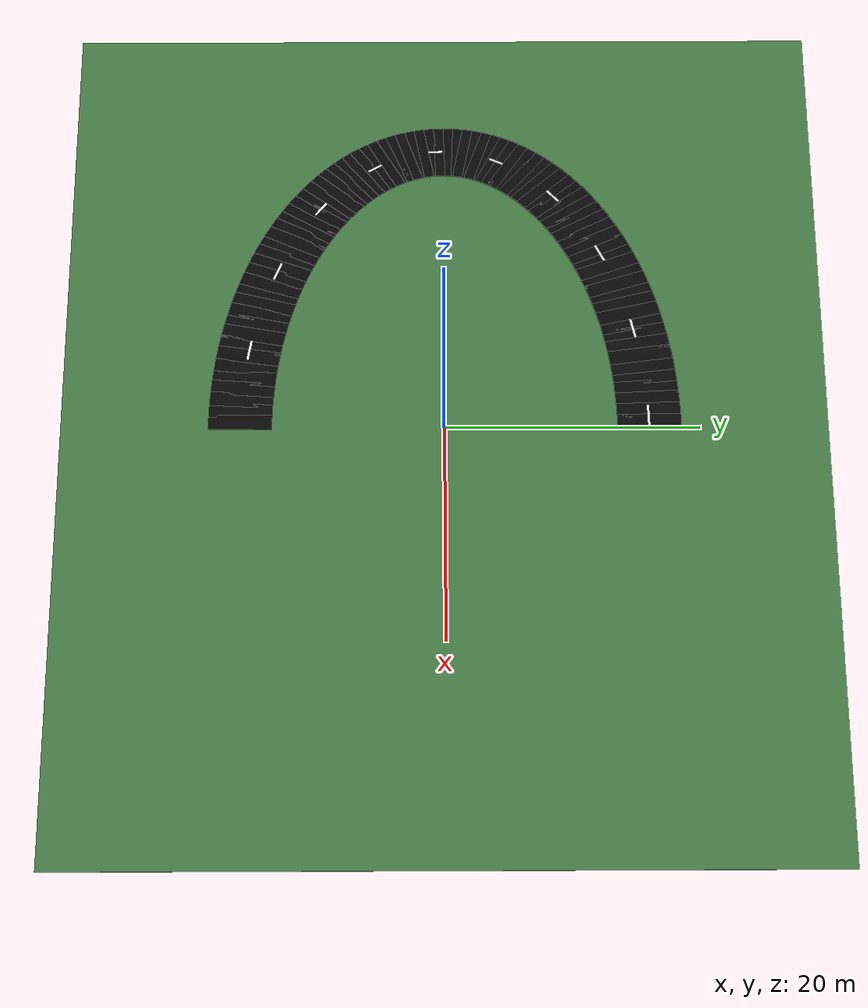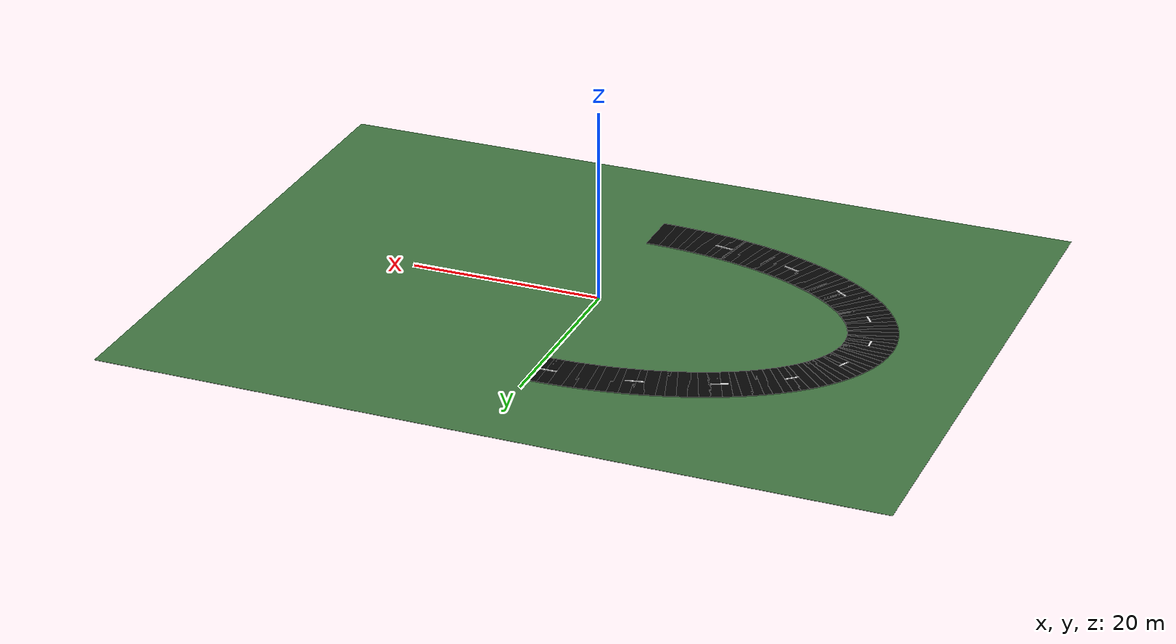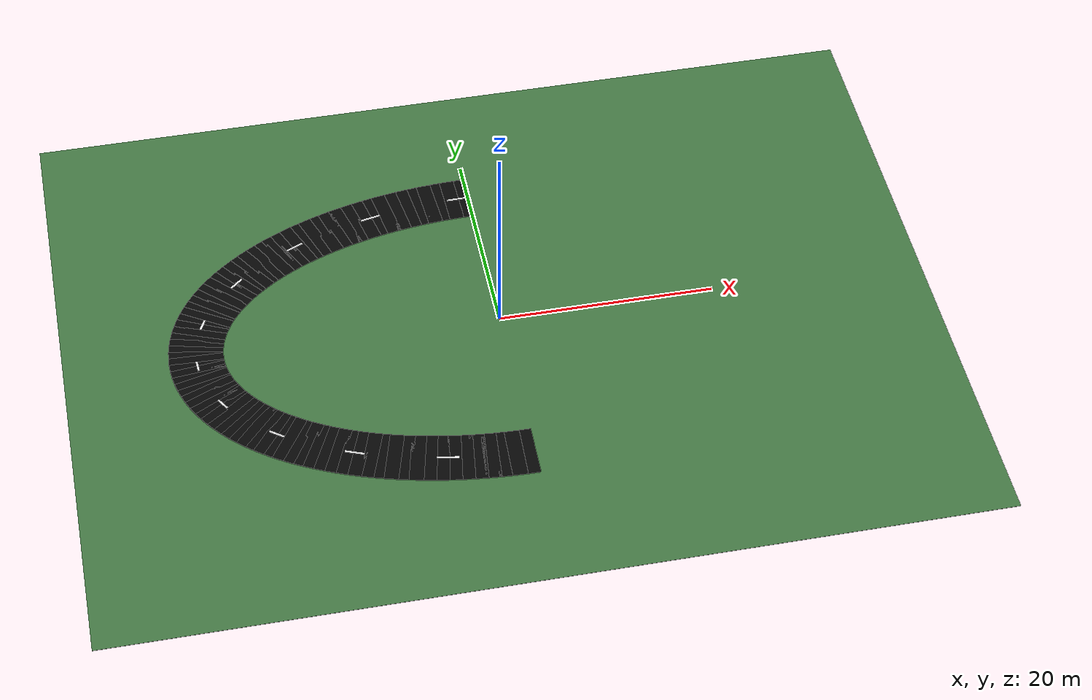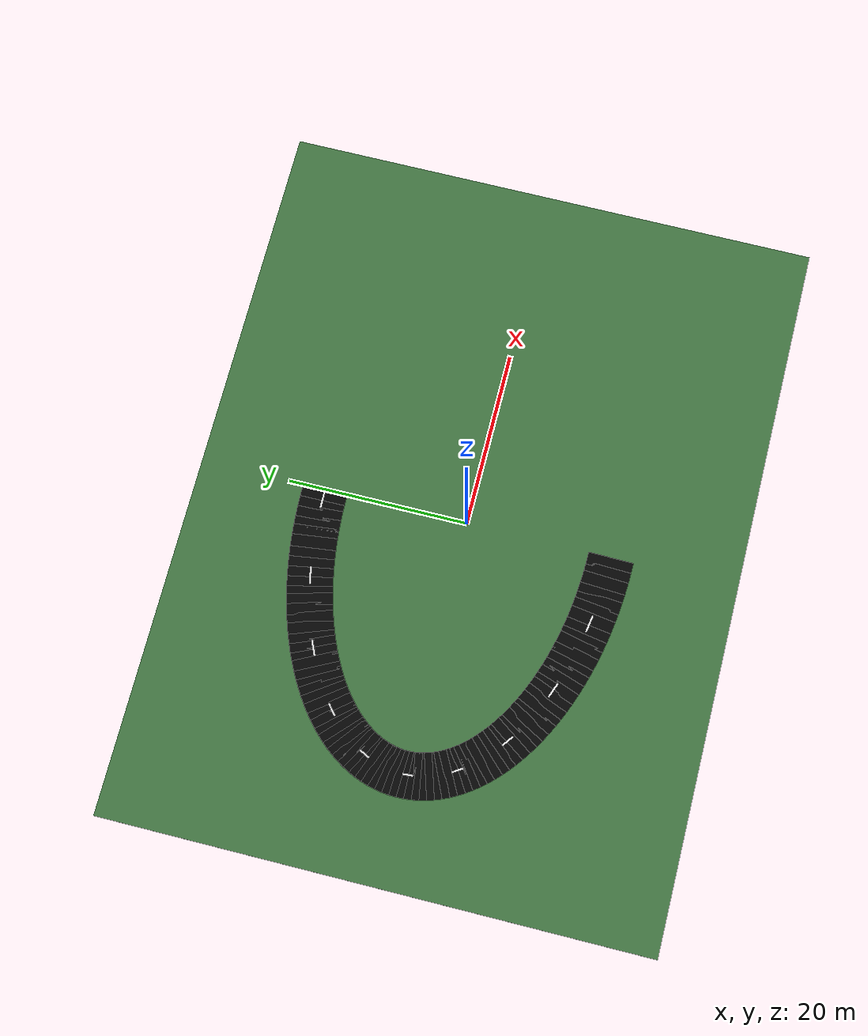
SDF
<sdf version="1.8">
 <world name="ellipse_road_world">
  <model name="ground">
   <static>true</static>
   <pose>0 0 -0.03 0 0 0</pose>
   <link name="link">
    <collision name="collision"><geometry><box><size>80 60 0.04</size></box></geometry></collision>
    <visual name="visual">
     <geometry><box><size>80 60 0.04</size></box></geometry>
     <material><ambient>0.25 0.45 0.25 1</ambient><diffuse>0.25 0.45 0.25 1</diffuse></material>
    </visual>
   </link>
  </model>
  <model name="road_segment_40">
   <static>true</static>
   <pose>-0.550 15.994 0.02 0 0 -3.130372</pose>
   <link name="link">
    <collision name="collision"><geometry><box><size>1.374 5.000 0.080</size></box></geometry></collision>
    <visual name="visual">
     <geometry><box><size>1.374 5.000 0.080</size></box></geometry>
     <material><ambient>0.02 0.02 0.02 1</ambient><diffuse>0.02 0.02 0.02 1</diffuse></material>
    </visual>
   </link>
  </model>
  <model name="road_segment_41">
   <static>true</static>
   <pose>-1.648 15.969 0.02 0 0 -3.107906</pose>
   <link name="link">
    <collision name="collision"><geometry><box><size>1.373 5.000 0.080</size></box></geometry></collision>
    <visual name="visual">
     <geometry><box><size>1.373 5.000 0.080</size></box></geometry>
     <material><ambient>0.02 0.02 0.02 1</ambient><diffuse>0.02 0.02 0.02 1</diffuse></material>
    </visual>
   </link>
  </model>
  <model name="road_segment_42">
   <static>true</static>
   <pose>-2.744 15.920 0.02 0 0 -3.085371</pose>
   <link name="link">
    <collision name="collision"><geometry><box><size>1.370 5.000 0.080</size></box></geometry></collision>
    <visual name="visual">
     <geometry><box><size>1.370 5.000 0.080</size></box></geometry>
     <material><ambient>0.02 0.02 0.02 1</ambient><diffuse>0.02 0.02 0.02 1</diffuse></material>
    </visual>
   </link>
  </model>
  <model name="road_segment_43">
   <static>true</static>
   <pose>-3.836 15.846 0.02 0 0 -3.062718</pose>
   <link name="link">
    <collision name="collision"><geometry><box><size>1.366 5.000 0.080</size></box></geometry></collision>
    <visual name="visual">
     <geometry><box><size>1.366 5.000 0.080</size></box></geometry>
     <material><ambient>0.02 0.02 0.02 1</ambient><diffuse>0.02 0.02 0.02 1</diffuse></material>
    </visual>
   </link>
  </model>
  <model name="road_segment_44">
   <static>true</static>
   <pose>-4.921 15.748 0.02 0 0 -3.039900</pose>
   <link name="link">
    <collision name="collision"><geometry><box><size>1.360 5.000 0.080</size></box></geometry></collision>
    <visual name="visual">
     <geometry><box><size>1.360 5.000 0.080</size></box></geometry>
     <material><ambient>0.02 0.02 0.02 1</ambient><diffuse>0.02 0.02 0.02 1</diffuse></material>
    </visual>
   </link>
  </model>
  <model name="road_segment_45">
   <static>true</static>
   <pose>-5.999 15.625 0.02 0 0 -3.016868</pose>
   <link name="link">
    <collision name="collision"><geometry><box><size>1.353 5.000 0.080</size></box></geometry></collision>
    <visual name="visual">
     <geometry><box><size>1.353 5.000 0.080</size></box></geometry>
     <material><ambient>0.02 0.02 0.02 1</ambient><diffuse>0.02 0.02 0.02 1</diffuse></material>
    </visual>
   </link>
  </model>
  <model name="road_segment_46">
   <static>true</static>
   <pose>-7.068 15.479 0.02 0 0 -2.993571</pose>
   <link name="link">
    <collision name="collision"><geometry><box><size>1.345 5.000 0.080</size></box></geometry></collision>
    <visual name="visual">
     <geometry><box><size>1.345 5.000 0.080</size></box></geometry>
     <material><ambient>0.02 0.02 0.02 1</ambient><diffuse>0.02 0.02 0.02 1</diffuse></material>
    </visual>
   </link>
  </model>
  <model name="road_segment_47">
   <static>true</static>
   <pose>-8.126 15.308 0.02 0 0 -2.969957</pose>
   <link name="link">
    <collision name="collision"><geometry><box><size>1.335 5.000 0.080</size></box></geometry></collision>
    <visual name="visual">
     <geometry><box><size>1.335 5.000 0.080</size></box></geometry>
     <material><ambient>0.02 0.02 0.02 1</ambient><diffuse>0.02 0.02 0.02 1</diffuse></material>
    </visual>
   </link>
  </model>
  <model name="road_segment_48">
   <static>true</static>
   <pose>-9.172 15.114 0.02 0 0 -2.945973</pose>
   <link name="link">
    <collision name="collision"><geometry><box><size>1.324 5.000 0.080</size></box></geometry></collision>
    <visual name="visual">
     <geometry><box><size>1.324 5.000 0.080</size></box></geometry>
     <material><ambient>0.02 0.02 0.02 1</ambient><diffuse>0.02 0.02 0.02 1</diffuse></material>
    </visual>
   </link>
  </model>
  <model name="road_segment_49">
   <static>true</static>
   <pose>-10.203 14.897 0.02 0 0 -2.921561</pose>
   <link name="link">
    <collision name="collision"><geometry><box><size>1.311 5.000 0.080</size></box></geometry></collision>
    <visual name="visual">
     <geometry><box><size>1.311 5.000 0.080</size></box></geometry>
     <material><ambient>0.02 0.02 0.02 1</ambient><diffuse>0.02 0.02 0.02 1</diffuse></material>
    </visual>
   </link>
  </model>
  <model name="road_segment_50">
   <static>true</static>
   <pose>-11.219 14.656 0.02 0 0 -2.896663</pose>
   <link name="link">
    <collision name="collision"><geometry><box><size>1.298 5.000 0.080</size></box></geometry></collision>
    <visual name="visual">
     <geometry><box><size>1.298 5.000 0.080</size></box></geometry>
     <material><ambient>0.02 0.02 0.02 1</ambient><diffuse>0.02 0.02 0.02 1</diffuse></material>
    </visual>
   </link>
  </model>
  <model name="road_segment_51">
   <static>true</static>
   <pose>-12.217 14.393 0.02 0 0 -2.871217</pose>
   <link name="link">
    <collision name="collision"><geometry><box><size>1.283 5.000 0.080</size></box></geometry></collision>
    <visual name="visual">
     <geometry><box><size>1.283 5.000 0.080</size></box></geometry>
     <material><ambient>0.02 0.02 0.02 1</ambient><diffuse>0.02 0.02 0.02 1</diffuse></material>
    </visual>
   </link>
  </model>
  <model name="road_segment_52">
   <static>true</static>
   <pose>-13.197 14.108 0.02 0 0 -2.845157</pose>
   <link name="link">
    <collision name="collision"><geometry><box><size>1.267 5.000 0.080</size></box></geometry></collision>
    <visual name="visual">
     <geometry><box><size>1.267 5.000 0.080</size></box></geometry>
     <material><ambient>0.02 0.02 0.02 1</ambient><diffuse>0.02 0.02 0.02 1</diffuse></material>
    </visual>
   </link>
  </model>
  <model name="road_segment_53">
   <static>true</static>
   <pose>-14.156 13.801 0.02 0 0 -2.818415</pose>
   <link name="link">
    <collision name="collision"><geometry><box><size>1.250 5.000 0.080</size></box></geometry></collision>
    <visual name="visual">
     <geometry><box><size>1.250 5.000 0.080</size></box></geometry>
     <material><ambient>0.02 0.02 0.02 1</ambient><diffuse>0.02 0.02 0.02 1</diffuse></material>
    </visual>
   </link>
  </model>
  <model name="road_segment_54">
   <static>true</static>
   <pose>-15.093 13.473 0.02 0 0 -2.790916</pose>
   <link name="link">
    <collision name="collision"><geometry><box><size>1.233 5.000 0.080</size></box></geometry></collision>
    <visual name="visual">
     <geometry><box><size>1.233 5.000 0.080</size></box></geometry>
     <material><ambient>0.02 0.02 0.02 1</ambient><diffuse>0.02 0.02 0.02 1</diffuse></material>
    </visual>
   </link>
  </model>
  <model name="road_segment_55">
   <static>true</static>
   <pose>-16.007 13.124 0.02 0 0 -2.762584</pose>
   <link name="link">
    <collision name="collision"><geometry><box><size>1.214 5.000 0.080</size></box></geometry></collision>
    <visual name="visual">
     <geometry><box><size>1.214 5.000 0.080</size></box></geometry>
     <material><ambient>0.02 0.02 0.02 1</ambient><diffuse>0.02 0.02 0.02 1</diffuse></material>
    </visual>
   </link>
  </model>
  <model name="road_segment_56">
   <static>true</static>
   <pose>-16.896 12.755 0.02 0 0 -2.733336</pose>
   <link name="link">
    <collision name="collision"><geometry><box><size>1.194 5.000 0.080</size></box></geometry></collision>
    <visual name="visual">
     <geometry><box><size>1.194 5.000 0.080</size></box></geometry>
     <material><ambient>0.02 0.02 0.02 1</ambient><diffuse>0.02 0.02 0.02 1</diffuse></material>
    </visual>
   </link>
  </model>
  <model name="road_segment_57">
   <static>true</static>
   <pose>-17.760 12.366 0.02 0 0 -2.703085</pose>
   <link name="link">
    <collision name="collision"><geometry><box><size>1.173 5.000 0.080</size></box></geometry></collision>
    <visual name="visual">
     <geometry><box><size>1.173 5.000 0.080</size></box></geometry>
     <material><ambient>0.02 0.02 0.02 1</ambient><diffuse>0.02 0.02 0.02 1</diffuse></material>
    </visual>
   </link>
  </model>
  <model name="road_segment_58">
   <static>true</static>
   <pose>-18.595 11.958 0.02 0 0 -2.671737</pose>
   <link name="link">
    <collision name="collision"><geometry><box><size>1.152 5.000 0.080</size></box></geometry></collision>
    <visual name="visual">
     <geometry><box><size>1.152 5.000 0.080</size></box></geometry>
     <material><ambient>0.02 0.02 0.02 1</ambient><diffuse>0.02 0.02 0.02 1</diffuse></material>
    </visual>
   </link>
  </model>
  <model name="road_segment_59">
   <static>true</static>
   <pose>-19.403 11.531 0.02 0 0 -2.639196</pose>
   <link name="link">
    <collision name="collision"><geometry><box><size>1.130 5.000 0.080</size></box></geometry></collision>
    <visual name="visual">
     <geometry><box><size>1.130 5.000 0.080</size></box></geometry>
     <material><ambient>0.02 0.02 0.02 1</ambient><diffuse>0.02 0.02 0.02 1</diffuse></material>
    </visual>
   </link>
  </model>
  <model name="road_segment_60">
   <static>true</static>
   <pose>-20.180 11.087 0.02 0 0 -2.605359</pose>
   <link name="link">
    <collision name="collision"><geometry><box><size>1.108 5.000 0.080</size></box></geometry></collision>
    <visual name="visual">
     <geometry><box><size>1.108 5.000 0.080</size></box></geometry>
     <material><ambient>0.02 0.02 0.02 1</ambient><diffuse>0.02 0.02 0.02 1</diffuse></material>
    </visual>
   </link>
  </model>
  <model name="road_segment_61">
   <static>true</static>
   <pose>-20.926 10.626 0.02 0 0 -2.570119</pose>
   <link name="link">
    <collision name="collision"><geometry><box><size>1.085 5.000 0.080</size></box></geometry></collision>
    <visual name="visual">
     <geometry><box><size>1.085 5.000 0.080</size></box></geometry>
     <material><ambient>0.02 0.02 0.02 1</ambient><diffuse>0.02 0.02 0.02 1</diffuse></material>
    </visual>
   </link>
  </model>
  <model name="road_segment_62">
   <static>true</static>
   <pose>-21.640 10.148 0.02 0 0 -2.533362</pose>
   <link name="link">
    <collision name="collision"><geometry><box><size>1.062 5.000 0.080</size></box></geometry></collision>
    <visual name="visual">
     <geometry><box><size>1.062 5.000 0.080</size></box></geometry>
     <material><ambient>0.02 0.02 0.02 1</ambient><diffuse>0.02 0.02 0.02 1</diffuse></material>
    </visual>
   </link>
  </model>
  <model name="road_segment_63">
   <static>true</static>
   <pose>-22.321 9.655 0.02 0 0 -2.494976</pose>
   <link name="link">
    <collision name="collision"><geometry><box><size>1.039 5.000 0.080</size></box></geometry></collision>
    <visual name="visual">
     <geometry><box><size>1.039 5.000 0.080</size></box></geometry>
     <material><ambient>0.02 0.02 0.02 1</ambient><diffuse>0.02 0.02 0.02 1</diffuse></material>
    </visual>
   </link>
  </model>
  <model name="road_segment_64">
   <static>true</static>
   <pose>-22.967 9.147 0.02 0 0 -2.454843</pose>
   <link name="link">
    <collision name="collision"><geometry><box><size>1.016 5.000 0.080</size></box></geometry></collision>
    <visual name="visual">
     <geometry><box><size>1.016 5.000 0.080</size></box></geometry>
     <material><ambient>0.02 0.02 0.02 1</ambient><diffuse>0.02 0.02 0.02 1</diffuse></material>
    </visual>
   </link>
  </model>
  <model name="road_segment_65">
   <static>true</static>
   <pose>-23.578 8.625 0.02 0 0 -2.412848</pose>
   <link name="link">
    <collision name="collision"><geometry><box><size>0.993 5.000 0.080</size></box></geometry></collision>
    <visual name="visual">
     <geometry><box><size>0.993 5.000 0.080</size></box></geometry>
     <material><ambient>0.02 0.02 0.02 1</ambient><diffuse>0.02 0.02 0.02 1</diffuse></material>
    </visual>
   </link>
  </model>
  <model name="road_segment_66">
   <static>true</static>
   <pose>-24.152 8.089 0.02 0 0 -2.368877</pose>
   <link name="link">
    <collision name="collision"><geometry><box><size>0.971 5.000 0.080</size></box></geometry></collision>
    <visual name="visual">
     <geometry><box><size>0.971 5.000 0.080</size></box></geometry>
     <material><ambient>0.02 0.02 0.02 1</ambient><diffuse>0.02 0.02 0.02 1</diffuse></material>
    </visual>
   </link>
  </model>
  <model name="road_segment_67">
   <static>true</static>
   <pose>-24.689 7.541 0.02 0 0 -2.322826</pose>
   <link name="link">
    <collision name="collision"><geometry><box><size>0.948 5.000 0.080</size></box></geometry></collision>
    <visual name="visual">
     <geometry><box><size>0.948 5.000 0.080</size></box></geometry>
     <material><ambient>0.02 0.02 0.02 1</ambient><diffuse>0.02 0.02 0.02 1</diffuse></material>
    </visual>
   </link>
  </model>
  <model name="road_segment_68">
   <static>true</static>
   <pose>-25.188 6.981 0.02 0 0 -2.274600</pose>
   <link name="link">
    <collision name="collision"><geometry><box><size>0.927 5.000 0.080</size></box></geometry></collision>
    <visual name="visual">
     <geometry><box><size>0.927 5.000 0.080</size></box></geometry>
     <material><ambient>0.02 0.02 0.02 1</ambient><diffuse>0.02 0.02 0.02 1</diffuse></material>
    </visual>
   </link>
  </model>
  <model name="road_segment_69">
   <static>true</static>
   <pose>-25.648 6.411 0.02 0 0 -2.224122</pose>
   <link name="link">
    <collision name="collision"><geometry><box><size>0.906 5.000 0.080</size></box></geometry></collision>
    <visual name="visual">
     <geometry><box><size>0.906 5.000 0.080</size></box></geometry>
     <material><ambient>0.02 0.02 0.02 1</ambient><diffuse>0.02 0.02 0.02 1</diffuse></material>
    </visual>
   </link>
  </model>
  <model name="road_segment_70">
   <static>true</static>
   <pose>-26.069 5.830 0.02 0 0 -2.171341</pose>
   <link name="link">
    <collision name="collision"><geometry><box><size>0.886 5.000 0.080</size></box></geometry></collision>
    <visual name="visual">
     <geometry><box><size>0.886 5.000 0.080</size></box></geometry>
     <material><ambient>0.02 0.02 0.02 1</ambient><diffuse>0.02 0.02 0.02 1</diffuse></material>
    </visual>
   </link>
  </model>
  <model name="road_segment_71">
   <static>true</static>
   <pose>-26.449 5.241 0.02 0 0 -2.116235</pose>
   <link name="link">
    <collision name="collision"><geometry><box><size>0.868 5.000 0.080</size></box></geometry></collision>
    <visual name="visual">
     <geometry><box><size>0.868 5.000 0.080</size></box></geometry>
     <material><ambient>0.02 0.02 0.02 1</ambient><diffuse>0.02 0.02 0.02 1</diffuse></material>
    </visual>
   </link>
  </model>
  <model name="road_segment_72">
   <static>true</static>
   <pose>-26.789 4.644 0.02 0 0 -2.058823</pose>
   <link name="link">
    <collision name="collision"><geometry><box><size>0.851 5.000 0.080</size></box></geometry></collision>
    <visual name="visual">
     <geometry><box><size>0.851 5.000 0.080</size></box></geometry>
     <material><ambient>0.02 0.02 0.02 1</ambient><diffuse>0.02 0.02 0.02 1</diffuse></material>
    </visual>
   </link>
  </model>
  <model name="road_segment_73">
   <static>true</static>
   <pose>-27.088 4.039 0.02 0 0 -1.999172</pose>
   <link name="link">
    <collision name="collision"><geometry><box><size>0.835 5.000 0.080</size></box></geometry></collision>
    <visual name="visual">
     <geometry><box><size>0.835 5.000 0.080</size></box></geometry>
     <material><ambient>0.02 0.02 0.02 1</ambient><diffuse>0.02 0.02 0.02 1</diffuse></material>
    </visual>
   </link>
  </model>
  <model name="road_segment_74">
   <static>true</static>
   <pose>-27.344 3.428 0.02 0 0 -1.937401</pose>
   <link name="link">
    <collision name="collision"><geometry><box><size>0.822 5.000 0.080</size></box></geometry></collision>
    <visual name="visual">
     <geometry><box><size>0.822 5.000 0.080</size></box></geometry>
     <material><ambient>0.02 0.02 0.02 1</ambient><diffuse>0.02 0.02 0.02 1</diffuse></material>
    </visual>
   </link>
  </model>
  <model name="road_segment_75">
   <static>true</static>
   <pose>-27.559 2.812 0.02 0 0 -1.873691</pose>
   <link name="link">
    <collision name="collision"><geometry><box><size>0.810 5.000 0.080</size></box></geometry></collision>
    <visual name="visual">
     <geometry><box><size>0.810 5.000 0.080</size></box></geometry>
     <material><ambient>0.02 0.02 0.02 1</ambient><diffuse>0.02 0.02 0.02 1</diffuse></material>
    </visual>
   </link>
  </model>
  <model name="road_segment_76">
   <static>true</static>
   <pose>-27.731 2.192 0.02 0 0 -1.808283</pose>
   <link name="link">
    <collision name="collision"><geometry><box><size>0.800 5.000 0.080</size></box></geometry></collision>
    <visual name="visual">
     <geometry><box><size>0.800 5.000 0.080</size></box></geometry>
     <material><ambient>0.02 0.02 0.02 1</ambient><diffuse>0.02 0.02 0.02 1</diffuse></material>
    </visual>
   </link>
  </model>
  <model name="road_segment_77">
   <static>true</static>
   <pose>-27.860 1.568 0.02 0 0 -1.741479</pose>
   <link name="link">
    <collision name="collision"><geometry><box><size>0.793 5.000 0.080</size></box></geometry></collision>
    <visual name="visual">
     <geometry><box><size>0.793 5.000 0.080</size></box></geometry>
     <material><ambient>0.02 0.02 0.02 1</ambient><diffuse>0.02 0.02 0.02 1</diffuse></material>
    </visual>
   </link>
  </model>
  <model name="road_segment_78">
   <static>true</static>
   <pose>-27.946 0.942 0.02 0 0 -1.673635</pose>
   <link name="link">
    <collision name="collision"><geometry><box><size>0.788 5.000 0.080</size></box></geometry></collision>
    <visual name="visual">
     <geometry><box><size>0.788 5.000 0.080</size></box></geometry>
     <material><ambient>0.02 0.02 0.02 1</ambient><diffuse>0.02 0.02 0.02 1</diffuse></material>
    </visual>
   </link>
  </model>
  <model name="road_segment_79">
   <static>true</static>
   <pose>-27.989 0.314 0.02 0 0 -1.605148</pose>
   <link name="link">
    <collision name="collision"><geometry><box><size>0.786 5.000 0.080</size></box></geometry></collision>
    <visual name="visual">
     <geometry><box><size>0.786 5.000 0.080</size></box></geometry>
     <material><ambient>0.02 0.02 0.02 1</ambient><diffuse>0.02 0.02 0.02 1</diffuse></material>
    </visual>
   </link>
  </model>
  <model name="road_segment_80">
   <static>true</static>
   <pose>-27.989 -0.314 0.02 0 0 -1.536444</pose>
   <link name="link">
    <collision name="collision"><geometry><box><size>0.786 5.000 0.080</size></box></geometry></collision>
    <visual name="visual">
     <geometry><box><size>0.786 5.000 0.080</size></box></geometry>
     <material><ambient>0.02 0.02 0.02 1</ambient><diffuse>0.02 0.02 0.02 1</diffuse></material>
    </visual>
   </link>
  </model>
  <model name="road_segment_81">
   <static>true</static>
   <pose>-27.946 -0.942 0.02 0 0 -1.467958</pose>
   <link name="link">
    <collision name="collision"><geometry><box><size>0.788 5.000 0.080</size></box></geometry></collision>
    <visual name="visual">
     <geometry><box><size>0.788 5.000 0.080</size></box></geometry>
     <material><ambient>0.02 0.02 0.02 1</ambient><diffuse>0.02 0.02 0.02 1</diffuse></material>
    </visual>
   </link>
  </model>
  <model name="road_segment_82">
   <static>true</static>
   <pose>-27.860 -1.568 0.02 0 0 -1.400113</pose>
   <link name="link">
    <collision name="collision"><geometry><box><size>0.793 5.000 0.080</size></box></geometry></collision>
    <visual name="visual">
     <geometry><box><size>0.793 5.000 0.080</size></box></geometry>
     <material><ambient>0.02 0.02 0.02 1</ambient><diffuse>0.02 0.02 0.02 1</diffuse></material>
    </visual>
   </link>
  </model>
  <model name="road_segment_83">
   <static>true</static>
   <pose>-27.731 -2.192 0.02 0 0 -1.333310</pose>
   <link name="link">
    <collision name="collision"><geometry><box><size>0.800 5.000 0.080</size></box></geometry></collision>
    <visual name="visual">
     <geometry><box><size>0.800 5.000 0.080</size></box></geometry>
     <material><ambient>0.02 0.02 0.02 1</ambient><diffuse>0.02 0.02 0.02 1</diffuse></material>
    </visual>
   </link>
  </model>
  <model name="road_segment_84">
   <static>true</static>
   <pose>-27.559 -2.812 0.02 0 0 -1.267902</pose>
   <link name="link">
    <collision name="collision"><geometry><box><size>0.810 5.000 0.080</size></box></geometry></collision>
    <visual name="visual">
     <geometry><box><size>0.810 5.000 0.080</size></box></geometry>
     <material><ambient>0.02 0.02 0.02 1</ambient><diffuse>0.02 0.02 0.02 1</diffuse></material>
    </visual>
   </link>
  </model>
  <model name="road_segment_85">
   <static>true</static>
   <pose>-27.344 -3.428 0.02 0 0 -1.204192</pose>
   <link name="link">
    <collision name="collision"><geometry><box><size>0.822 5.000 0.080</size></box></geometry></collision>
    <visual name="visual">
     <geometry><box><size>0.822 5.000 0.080</size></box></geometry>
     <material><ambient>0.02 0.02 0.02 1</ambient><diffuse>0.02 0.02 0.02 1</diffuse></material>
    </visual>
   </link>
  </model>
  <model name="road_segment_86">
   <static>true</static>
   <pose>-27.088 -4.039 0.02 0 0 -1.142421</pose>
   <link name="link">
    <collision name="collision"><geometry><box><size>0.835 5.000 0.080</size></box></geometry></collision>
    <visual name="visual">
     <geometry><box><size>0.835 5.000 0.080</size></box></geometry>
     <material><ambient>0.02 0.02 0.02 1</ambient><diffuse>0.02 0.02 0.02 1</diffuse></material>
    </visual>
   </link>
  </model>
  <model name="road_segment_87">
   <static>true</static>
   <pose>-26.789 -4.644 0.02 0 0 -1.082769</pose>
   <link name="link">
    <collision name="collision"><geometry><box><size>0.851 5.000 0.080</size></box></geometry></collision>
    <visual name="visual">
     <geometry><box><size>0.851 5.000 0.080</size></box></geometry>
     <material><ambient>0.02 0.02 0.02 1</ambient><diffuse>0.02 0.02 0.02 1</diffuse></material>
    </visual>
   </link>
  </model>
  <model name="road_segment_88">
   <static>true</static>
   <pose>-26.449 -5.241 0.02 0 0 -1.025357</pose>
   <link name="link">
    <collision name="collision"><geometry><box><size>0.868 5.000 0.080</size></box></geometry></collision>
    <visual name="visual">
     <geometry><box><size>0.868 5.000 0.080</size></box></geometry>
     <material><ambient>0.02 0.02 0.02 1</ambient><diffuse>0.02 0.02 0.02 1</diffuse></material>
    </visual>
   </link>
  </model>
  <model name="road_segment_89">
   <static>true</static>
   <pose>-26.069 -5.830 0.02 0 0 -0.970252</pose>
   <link name="link">
    <collision name="collision"><geometry><box><size>0.886 5.000 0.080</size></box></geometry></collision>
    <visual name="visual">
     <geometry><box><size>0.886 5.000 0.080</size></box></geometry>
     <material><ambient>0.02 0.02 0.02 1</ambient><diffuse>0.02 0.02 0.02 1</diffuse></material>
    </visual>
   </link>
  </model>
  <model name="road_segment_90">
   <static>true</static>
   <pose>-25.648 -6.411 0.02 0 0 -0.917470</pose>
   <link name="link">
    <collision name="collision"><geometry><box><size>0.906 5.000 0.080</size></box></geometry></collision>
    <visual name="visual">
     <geometry><box><size>0.906 5.000 0.080</size></box></geometry>
     <material><ambient>0.02 0.02 0.02 1</ambient><diffuse>0.02 0.02 0.02 1</diffuse></material>
    </visual>
   </link>
  </model>
  <model name="road_segment_91">
   <static>true</static>
   <pose>-25.188 -6.981 0.02 0 0 -0.866993</pose>
   <link name="link">
    <collision name="collision"><geometry><box><size>0.927 5.000 0.080</size></box></geometry></collision>
    <visual name="visual">
     <geometry><box><size>0.927 5.000 0.080</size></box></geometry>
     <material><ambient>0.02 0.02 0.02 1</ambient><diffuse>0.02 0.02 0.02 1</diffuse></material>
    </visual>
   </link>
  </model>
  <model name="road_segment_92">
   <static>true</static>
   <pose>-24.689 -7.541 0.02 0 0 -0.818767</pose>
   <link name="link">
    <collision name="collision"><geometry><box><size>0.948 5.000 0.080</size></box></geometry></collision>
    <visual name="visual">
     <geometry><box><size>0.948 5.000 0.080</size></box></geometry>
     <material><ambient>0.02 0.02 0.02 1</ambient><diffuse>0.02 0.02 0.02 1</diffuse></material>
    </visual>
   </link>
  </model>
  <model name="road_segment_93">
   <static>true</static>
   <pose>-24.152 -8.089 0.02 0 0 -0.772715</pose>
   <link name="link">
    <collision name="collision"><geometry><box><size>0.971 5.000 0.080</size></box></geometry></collision>
    <visual name="visual">
     <geometry><box><size>0.971 5.000 0.080</size></box></geometry>
     <material><ambient>0.02 0.02 0.02 1</ambient><diffuse>0.02 0.02 0.02 1</diffuse></material>
    </visual>
   </link>
  </model>
  <model name="road_segment_94">
   <static>true</static>
   <pose>-23.578 -8.625 0.02 0 0 -0.728745</pose>
   <link name="link">
    <collision name="collision"><geometry><box><size>0.993 5.000 0.080</size></box></geometry></collision>
    <visual name="visual">
     <geometry><box><size>0.993 5.000 0.080</size></box></geometry>
     <material><ambient>0.02 0.02 0.02 1</ambient><diffuse>0.02 0.02 0.02 1</diffuse></material>
    </visual>
   </link>
  </model>
  <model name="road_segment_95">
   <static>true</static>
   <pose>-22.967 -9.147 0.02 0 0 -0.686749</pose>
   <link name="link">
    <collision name="collision"><geometry><box><size>1.016 5.000 0.080</size></box></geometry></collision>
    <visual name="visual">
     <geometry><box><size>1.016 5.000 0.080</size></box></geometry>
     <material><ambient>0.02 0.02 0.02 1</ambient><diffuse>0.02 0.02 0.02 1</diffuse></material>
    </visual>
   </link>
  </model>
  <model name="road_segment_96">
   <static>true</static>
   <pose>-22.321 -9.655 0.02 0 0 -0.646616</pose>
   <link name="link">
    <collision name="collision"><geometry><box><size>1.039 5.000 0.080</size></box></geometry></collision>
    <visual name="visual">
     <geometry><box><size>1.039 5.000 0.080</size></box></geometry>
     <material><ambient>0.02 0.02 0.02 1</ambient><diffuse>0.02 0.02 0.02 1</diffuse></material>
    </visual>
   </link>
  </model>
  <model name="road_segment_97">
   <static>true</static>
   <pose>-21.640 -10.148 0.02 0 0 -0.608230</pose>
   <link name="link">
    <collision name="collision"><geometry><box><size>1.062 5.000 0.080</size></box></geometry></collision>
    <visual name="visual">
     <geometry><box><size>1.062 5.000 0.080</size></box></geometry>
     <material><ambient>0.02 0.02 0.02 1</ambient><diffuse>0.02 0.02 0.02 1</diffuse></material>
    </visual>
   </link>
  </model>
  <model name="road_segment_98">
   <static>true</static>
   <pose>-20.926 -10.626 0.02 0 0 -0.571474</pose>
   <link name="link">
    <collision name="collision"><geometry><box><size>1.085 5.000 0.080</size></box></geometry></collision>
    <visual name="visual">
     <geometry><box><size>1.085 5.000 0.080</size></box></geometry>
     <material><ambient>0.02 0.02 0.02 1</ambient><diffuse>0.02 0.02 0.02 1</diffuse></material>
    </visual>
   </link>
  </model>
  <model name="road_segment_99">
   <static>true</static>
   <pose>-20.180 -11.087 0.02 0 0 -0.536233</pose>
   <link name="link">
    <collision name="collision"><geometry><box><size>1.108 5.000 0.080</size></box></geometry></collision>
    <visual name="visual">
     <geometry><box><size>1.108 5.000 0.080</size></box></geometry>
     <material><ambient>0.02 0.02 0.02 1</ambient><diffuse>0.02 0.02 0.02 1</diffuse></material>
    </visual>
   </link>
  </model>
  <model name="road_segment_100">
   <static>true</static>
   <pose>-19.403 -11.531 0.02 0 0 -0.502396</pose>
   <link name="link">
    <collision name="collision"><geometry><box><size>1.130 5.000 0.080</size></box></geometry></collision>
    <visual name="visual">
     <geometry><box><size>1.130 5.000 0.080</size></box></geometry>
     <material><ambient>0.02 0.02 0.02 1</ambient><diffuse>0.02 0.02 0.02 1</diffuse></material>
    </visual>
   </link>
  </model>
  <model name="road_segment_101">
   <static>true</static>
   <pose>-18.595 -11.958 0.02 0 0 -0.469855</pose>
   <link name="link">
    <collision name="collision"><geometry><box><size>1.152 5.000 0.080</size></box></geometry></collision>
    <visual name="visual">
     <geometry><box><size>1.152 5.000 0.080</size></box></geometry>
     <material><ambient>0.02 0.02 0.02 1</ambient><diffuse>0.02 0.02 0.02 1</diffuse></material>
    </visual>
   </link>
  </model>
  <model name="road_segment_102">
   <static>true</static>
   <pose>-17.760 -12.366 0.02 0 0 -0.438508</pose>
   <link name="link">
    <collision name="collision"><geometry><box><size>1.173 5.000 0.080</size></box></geometry></collision>
    <visual name="visual">
     <geometry><box><size>1.173 5.000 0.080</size></box></geometry>
     <material><ambient>0.02 0.02 0.02 1</ambient><diffuse>0.02 0.02 0.02 1</diffuse></material>
    </visual>
   </link>
  </model>
  <model name="road_segment_103">
   <static>true</static>
   <pose>-16.896 -12.755 0.02 0 0 -0.408257</pose>
   <link name="link">
    <collision name="collision"><geometry><box><size>1.194 5.000 0.080</size></box></geometry></collision>
    <visual name="visual">
     <geometry><box><size>1.194 5.000 0.080</size></box></geometry>
     <material><ambient>0.02 0.02 0.02 1</ambient><diffuse>0.02 0.02 0.02 1</diffuse></material>
    </visual>
   </link>
  </model>
  <model name="road_segment_104">
   <static>true</static>
   <pose>-16.007 -13.124 0.02 0 0 -0.379009</pose>
   <link name="link">
    <collision name="collision"><geometry><box><size>1.214 5.000 0.080</size></box></geometry></collision>
    <visual name="visual">
     <geometry><box><size>1.214 5.000 0.080</size></box></geometry>
     <material><ambient>0.02 0.02 0.02 1</ambient><diffuse>0.02 0.02 0.02 1</diffuse></material>
    </visual>
   </link>
  </model>
  <model name="road_segment_105">
   <static>true</static>
   <pose>-15.093 -13.473 0.02 0 0 -0.350676</pose>
   <link name="link">
    <collision name="collision"><geometry><box><size>1.233 5.000 0.080</size></box></geometry></collision>
    <visual name="visual">
     <geometry><box><size>1.233 5.000 0.080</size></box></geometry>
     <material><ambient>0.02 0.02 0.02 1</ambient><diffuse>0.02 0.02 0.02 1</diffuse></material>
    </visual>
   </link>
  </model>
  <model name="road_segment_106">
   <static>true</static>
   <pose>-14.156 -13.801 0.02 0 0 -0.323178</pose>
   <link name="link">
    <collision name="collision"><geometry><box><size>1.250 5.000 0.080</size></box></geometry></collision>
    <visual name="visual">
     <geometry><box><size>1.250 5.000 0.080</size></box></geometry>
     <material><ambient>0.02 0.02 0.02 1</ambient><diffuse>0.02 0.02 0.02 1</diffuse></material>
    </visual>
   </link>
  </model>
  <model name="road_segment_107">
   <static>true</static>
   <pose>-13.197 -14.108 0.02 0 0 -0.296435</pose>
   <link name="link">
    <collision name="collision"><geometry><box><size>1.267 5.000 0.080</size></box></geometry></collision>
    <visual name="visual">
     <geometry><box><size>1.267 5.000 0.080</size></box></geometry>
     <material><ambient>0.02 0.02 0.02 1</ambient><diffuse>0.02 0.02 0.02 1</diffuse></material>
    </visual>
   </link>
  </model>
  <model name="road_segment_108">
   <static>true</static>
   <pose>-12.217 -14.393 0.02 0 0 -0.270376</pose>
   <link name="link">
    <collision name="collision"><geometry><box><size>1.283 5.000 0.080</size></box></geometry></collision>
    <visual name="visual">
     <geometry><box><size>1.283 5.000 0.080</size></box></geometry>
     <material><ambient>0.02 0.02 0.02 1</ambient><diffuse>0.02 0.02 0.02 1</diffuse></material>
    </visual>
   </link>
  </model>
  <model name="road_segment_109">
   <static>true</static>
   <pose>-11.219 -14.656 0.02 0 0 -0.244930</pose>
   <link name="link">
    <collision name="collision"><geometry><box><size>1.298 5.000 0.080</size></box></geometry></collision>
    <visual name="visual">
     <geometry><box><size>1.298 5.000 0.080</size></box></geometry>
     <material><ambient>0.02 0.02 0.02 1</ambient><diffuse>0.02 0.02 0.02 1</diffuse></material>
    </visual>
   </link>
  </model>
  <model name="road_segment_110">
   <static>true</static>
   <pose>-10.203 -14.897 0.02 0 0 -0.220032</pose>
   <link name="link">
    <collision name="collision"><geometry><box><size>1.311 5.000 0.080</size></box></geometry></collision>
    <visual name="visual">
     <geometry><box><size>1.311 5.000 0.080</size></box></geometry>
     <material><ambient>0.02 0.02 0.02 1</ambient><diffuse>0.02 0.02 0.02 1</diffuse></material>
    </visual>
   </link>
  </model>
  <model name="road_segment_111">
   <static>true</static>
   <pose>-9.172 -15.114 0.02 0 0 -0.195620</pose>
   <link name="link">
    <collision name="collision"><geometry><box><size>1.324 5.000 0.080</size></box></geometry></collision>
    <visual name="visual">
     <geometry><box><size>1.324 5.000 0.080</size></box></geometry>
     <material><ambient>0.02 0.02 0.02 1</ambient><diffuse>0.02 0.02 0.02 1</diffuse></material>
    </visual>
   </link>
  </model>
  <model name="road_segment_112">
   <static>true</static>
   <pose>-8.126 -15.308 0.02 0 0 -0.171635</pose>
   <link name="link">
    <collision name="collision"><geometry><box><size>1.335 5.000 0.080</size></box></geometry></collision>
    <visual name="visual">
     <geometry><box><size>1.335 5.000 0.080</size></box></geometry>
     <material><ambient>0.02 0.02 0.02 1</ambient><diffuse>0.02 0.02 0.02 1</diffuse></material>
    </visual>
   </link>
  </model>
  <model name="road_segment_113">
   <static>true</static>
   <pose>-7.068 -15.479 0.02 0 0 -0.148022</pose>
   <link name="link">
    <collision name="collision"><geometry><box><size>1.345 5.000 0.080</size></box></geometry></collision>
    <visual name="visual">
     <geometry><box><size>1.345 5.000 0.080</size></box></geometry>
     <material><ambient>0.02 0.02 0.02 1</ambient><diffuse>0.02 0.02 0.02 1</diffuse></material>
    </visual>
   </link>
  </model>
  <model name="road_segment_114">
   <static>true</static>
   <pose>-5.999 -15.625 0.02 0 0 -0.124725</pose>
   <link name="link">
    <collision name="collision"><geometry><box><size>1.353 5.000 0.080</size></box></geometry></collision>
    <visual name="visual">
     <geometry><box><size>1.353 5.000 0.080</size></box></geometry>
     <material><ambient>0.02 0.02 0.02 1</ambient><diffuse>0.02 0.02 0.02 1</diffuse></material>
    </visual>
   </link>
  </model>
  <model name="road_segment_115">
   <static>true</static>
   <pose>-4.921 -15.748 0.02 0 0 -0.101692</pose>
   <link name="link">
    <collision name="collision"><geometry><box><size>1.360 5.000 0.080</size></box></geometry></collision>
    <visual name="visual">
     <geometry><box><size>1.360 5.000 0.080</size></box></geometry>
     <material><ambient>0.02 0.02 0.02 1</ambient><diffuse>0.02 0.02 0.02 1</diffuse></material>
    </visual>
   </link>
  </model>
  <model name="road_segment_116">
   <static>true</static>
   <pose>-3.836 -15.846 0.02 0 0 -0.078874</pose>
   <link name="link">
    <collision name="collision"><geometry><box><size>1.366 5.000 0.080</size></box></geometry></collision>
    <visual name="visual">
     <geometry><box><size>1.366 5.000 0.080</size></box></geometry>
     <material><ambient>0.02 0.02 0.02 1</ambient><diffuse>0.02 0.02 0.02 1</diffuse></material>
    </visual>
   </link>
  </model>
  <model name="road_segment_117">
   <static>true</static>
   <pose>-2.744 -15.920 0.02 0 0 -0.056221</pose>
   <link name="link">
    <collision name="collision"><geometry><box><size>1.370 5.000 0.080</size></box></geometry></collision>
    <visual name="visual">
     <geometry><box><size>1.370 5.000 0.080</size></box></geometry>
     <material><ambient>0.02 0.02 0.02 1</ambient><diffuse>0.02 0.02 0.02 1</diffuse></material>
    </visual>
   </link>
  </model>
  <model name="road_segment_118">
   <static>true</static>
   <pose>-1.648 -15.969 0.02 0 0 -0.033686</pose>
   <link name="link">
    <collision name="collision"><geometry><box><size>1.373 5.000 0.080</size></box></geometry></collision>
    <visual name="visual">
     <geometry><box><size>1.373 5.000 0.080</size></box></geometry>
     <material><ambient>0.02 0.02 0.02 1</ambient><diffuse>0.02 0.02 0.02 1</diffuse></material>
    </visual>
   </link>
  </model>
  <model name="road_segment_119">
   <static>true</static>
   <pose>-0.550 -15.994 0.02 0 0 -0.011221</pose>
   <link name="link">
    <collision name="collision"><geometry><box><size>1.374 5.000 0.080</size></box></geometry></collision>
    <visual name="visual">
     <geometry><box><size>1.374 5.000 0.080</size></box></geometry>
     <material><ambient>0.02 0.02 0.02 1</ambient><diffuse>0.02 0.02 0.02 1</diffuse></material>
    </visual>
   </link>
  </model>
  <model name="center_dash_40">
   <static>true</static>
   <pose>-1.098 15.975 0.085 0 0 -3.119145</pose>
   <link name="link">
    <visual name="visual">
     <geometry><box><size>1.978 0.18 0.015</size></box></geometry>
     <material><ambient>1 1 1 1</ambient><diffuse>1 1 1 1</diffuse></material>
    </visual>
   </link>
  </model>
  <model name="center_dash_48">
   <static>true</static>
   <pose>-9.684 14.999 0.085 0 0 -2.933824</pose>
   <link name="link">
    <visual name="visual">
     <geometry><box><size>1.897 0.18 0.015</size></box></geometry>
     <material><ambient>1 1 1 1</ambient><diffuse>1 1 1 1</diffuse></material>
    </visual>
   </link>
  </model>
  <model name="center_dash_56">
   <static>true</static>
   <pose>-17.321 12.555 0.085 0 0 -2.718341</pose>
   <link name="link">
    <visual name="visual">
     <geometry><box><size>1.704 0.18 0.015</size></box></geometry>
     <material><ambient>1 1 1 1</ambient><diffuse>1 1 1 1</diffuse></material>
    </visual>
   </link>
  </model>
  <model name="center_dash_64">
   <static>true</static>
   <pose>-23.263 8.882 0.085 0 0 -2.434086</pose>
   <link name="link">
    <visual name="visual">
     <geometry><box><size>1.446 0.18 0.015</size></box></geometry>
     <material><ambient>1 1 1 1</ambient><diffuse>1 1 1 1</diffuse></material>
    </visual>
   </link>
  </model>
  <model name="center_dash_72">
   <static>true</static>
   <pose>-26.928 4.340 0.085 0 0 -2.029271</pose>
   <link name="link">
    <visual name="visual">
     <geometry><box><size>1.214 0.18 0.015</size></box></geometry>
     <material><ambient>1 1 1 1</ambient><diffuse>1 1 1 1</diffuse></material>
    </visual>
   </link>
  </model>
  <model name="center_dash_80">
   <static>true</static>
   <pose>-27.957 -0.628 0.085 0 0 -1.502147</pose>
   <link name="link">
    <visual name="visual">
     <geometry><box><size>1.132 0.18 0.015</size></box></geometry>
     <material><ambient>1 1 1 1</ambient><diffuse>1 1 1 1</diffuse></material>
    </visual>
   </link>
  </model>
  <model name="center_dash_88">
   <static>true</static>
   <pose>-26.249 -5.534 0.085 0 0 -0.997514</pose>
   <link name="link">
    <visual name="visual">
     <geometry><box><size>1.263 0.18 0.015</size></box></geometry>
     <material><ambient>1 1 1 1</ambient><diffuse>1 1 1 1</diffuse></material>
    </visual>
   </link>
  </model>
  <model name="center_dash_96">
   <static>true</static>
   <pose>-21.972 -9.898 0.085 0 0 -0.627212</pose>
   <link name="link">
    <visual name="visual">
     <geometry><box><size>1.513 0.18 0.015</size></box></geometry>
     <material><ambient>1 1 1 1</ambient><diffuse>1 1 1 1</diffuse></material>
    </visual>
   </link>
  </model>
  <model name="center_dash_104">
   <static>true</static>
   <pose>-15.544 -13.293 0.085 0 0 -0.364733</pose>
   <link name="link">
    <visual name="visual">
     <geometry><box><size>1.761 0.18 0.015</size></box></geometry>
     <material><ambient>1 1 1 1</ambient><diffuse>1 1 1 1</diffuse></material>
    </visual>
   </link>
  </model>
  <model name="center_dash_112">
   <static>true</static>
   <pose>-7.594 -15.387 0.085 0 0 -0.159786</pose>
   <link name="link">
    <visual name="visual">
     <geometry><box><size>1.929 0.18 0.015</size></box></geometry>
     <material><ambient>1 1 1 1</ambient><diffuse>1 1 1 1</diffuse></material>
    </visual>
   </link>
  </model>
 </world>
</sdf>
